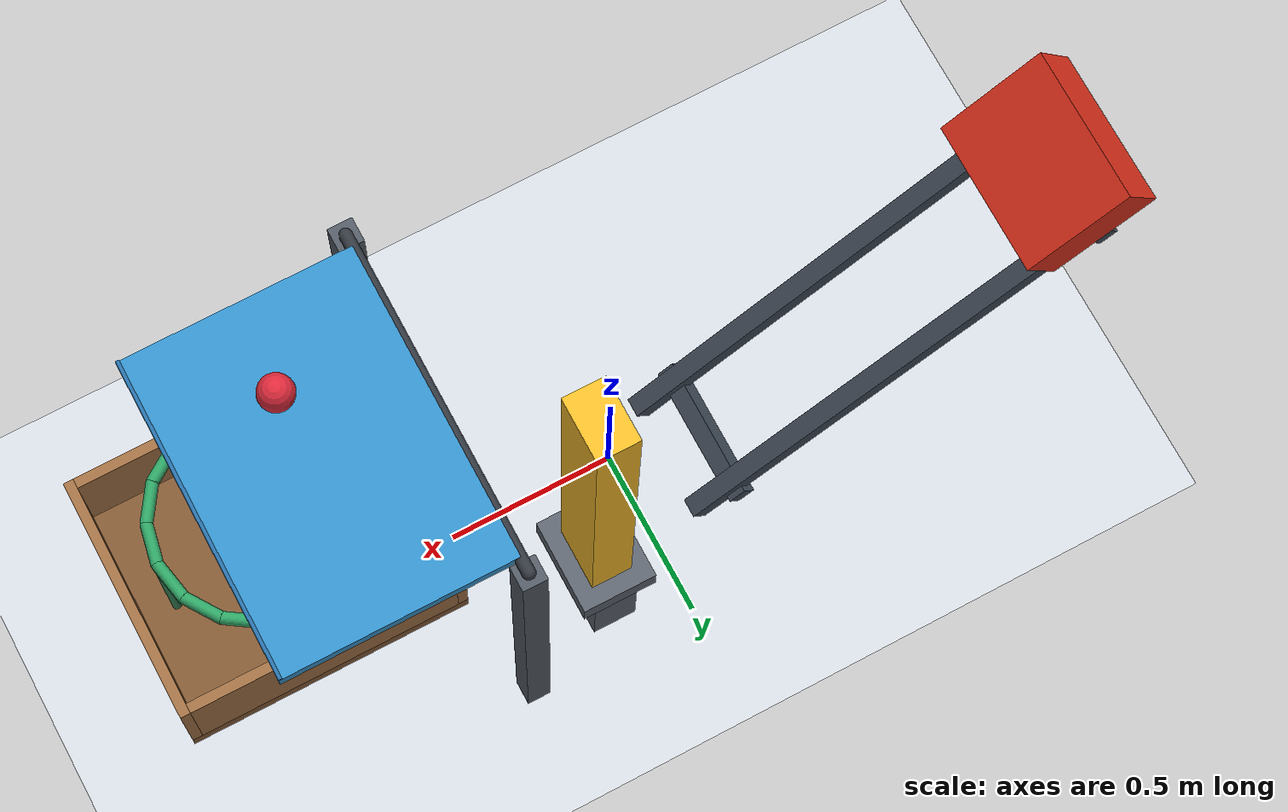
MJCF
<mujoco model="cart_domino_flap_ball">
  <compiler angle="degree" autolimits="true"/>
  <option timestep="0.002" gravity="0 0 -9.81" integrator="implicitfast" iterations="100" tolerance="1e-9"/>
  <size njmax="2000" nconmax="400"/>
  <visual>
    <global azimuth="135" elevation="-22"/>
    <headlight ambient="0.35 0.35 0.35" diffuse="0.7 0.7 0.7" specular="0.2 0.2 0.2"/>
  </visual>

  <worldbody>
    <light name="overhead" pos="0 -2 4" dir="0 0 -1"/>
    <camera name="overview" pos="2.8 -4.5 2.8" xyaxes="0.86 0.51 0 -0.23 0.39 0.89"/>
    <geom name="floor" type="plane" size="5 5 0.1" rgba="0.82 0.84 0.87 1" friction="0.9 0.02 0.01" condim="6"/>

    <!-- The slide joint supplies the rail constraint; its travel is 1.2 m. -->
    <body name="rail" pos="-0.546 0.31 1.392" quat="0.948683298 0 0.316227766 0">
      <geom name="rail_left" type="box" pos="0 -0.15 0" size="0.70 0.025 0.03" contype="0" conaffinity="0" rgba="0.24 0.28 0.33 1"/>
      <geom name="rail_right" type="box" pos="0 0.15 0" size="0.70 0.025 0.03" contype="0" conaffinity="0" rgba="0.24 0.28 0.33 1"/>
      <geom name="rail_crossbar_upper" type="box" pos="-0.58 0 -0.025" size="0.025 0.19 0.025" contype="0" conaffinity="0" rgba="0.24 0.28 0.33 1"/>
      <geom name="rail_crossbar_lower" type="box" pos="0.58 0 -0.025" size="0.025 0.19 0.025" contype="0" conaffinity="0" rgba="0.24 0.28 0.33 1"/>
    </body>

    <body name="cart" pos="-0.96 0.31 1.84">
      <joint name="cart_slide" type="slide" axis="0.8 0 -0.6" range="0 1.2" damping="0.05" solreflimit="0.008 1"/>
      <geom name="cart_chassis" type="box" size="0.15 0.20 0.08" quat="0.948683298 0 0.316227766 0" mass="1.8" friction="0.6 0.01 0.001" solref="0.008 1" rgba="0.85 0.18 0.10 1"/>
    </body>

    <body name="domino_support" pos="0.21 0.31 0">
      <geom name="domino_support_column" type="box" pos="0 0 0.18" size="0.065 0.12 0.18" rgba="0.36 0.39 0.43 1"/>
      <geom name="domino_support_top" type="box" pos="0 0 0.36" size="0.11 0.14 0.04" friction="1.2 0.02 0.002" solref="0.008 1" rgba="0.36 0.39 0.43 1"/>
    </body>

    <!-- Offset across the flap, the falling domino stays beside the ball's path. -->
    <body name="domino" pos="0.21 0.31 1.0">
      <freejoint name="domino_free"/>
      <geom name="domino_slab" type="box" size="0.06 0.09 0.60" mass="1.5" friction="1.2 0.02 0.002" condim="4" solref="0.008 1" rgba="0.96 0.73 0.16 1"/>
    </body>

    <body name="flap_support" pos="0.5 0 0">
      <geom name="flap_support_positive" type="box" pos="0 0.49 0.65" size="0.035 0.035 0.65" rgba="0.32 0.35 0.39 1"/>
      <geom name="flap_support_negative" type="box" pos="0 -0.49 0.65" size="0.035 0.035 0.65" rgba="0.32 0.35 0.39 1"/>
      <geom name="flap_support_axle" type="capsule" fromto="0 -0.49 1.3 0 0.49 1.3" size="0.018" contype="0" conaffinity="0" rgba="0.20 0.22 0.25 1"/>
    </body>

    <!-- Hinge friction holds the loaded flap until the domino strikes it. -->
    <body name="flap" pos="0.5 0 1.3">
      <joint name="flap_hinge" type="hinge" axis="0 1 0" range="0 60" frictionloss="0.75" damping="0.4" armature="0.002" solreflimit="0.008 1"/>
      <geom name="flap_plate" type="box" pos="0.325 0 0" size="0.325 0.45 0.02" mass="0.12" friction="0.55 0.005 0.001" solref="0.008 1" rgba="0.20 0.56 0.78 1"/>
      <geom name="flap_release_lip" type="box" pos="0.645 0 0.0235" size="0.005 0.45 0.0035" mass="0.004" friction="0.35 0.005 0.001" solref="0.008 1" rgba="0.15 0.43 0.65 1"/>
    </body>

    <body name="ball" pos="0.84 -0.18 1.37">
      <freejoint name="ball_free"/>
      <geom name="ball_sphere" type="sphere" size="0.05" mass="0.06" friction="0.8 0.02 0.01" condim="6" solref="0.015 1" solimp="0.95 0.99 0.001" rgba="0.86 0.16 0.23 1"/>
    </body>

    <!-- A closed, sixteen-segment circular ring with a clear central opening. -->
    <body name="ring" pos="0.98 -0.18 0.50">
      <geom name="ring_01" type="capsule" fromto="0.300000 0 0 0.277164 0.114805 0" size="0.018" friction="0.7 0.02 0.01" condim="6" rgba="0.18 0.64 0.39 1"/>
      <geom name="ring_02" type="capsule" fromto="0.277164 0.114805 0 0.212132 0.212132 0" size="0.018" friction="0.7 0.02 0.01" condim="6" rgba="0.18 0.64 0.39 1"/>
      <geom name="ring_03" type="capsule" fromto="0.212132 0.212132 0 0.114805 0.277164 0" size="0.018" friction="0.7 0.02 0.01" condim="6" rgba="0.18 0.64 0.39 1"/>
      <geom name="ring_04" type="capsule" fromto="0.114805 0.277164 0 0 0.300000 0" size="0.018" friction="0.7 0.02 0.01" condim="6" rgba="0.18 0.64 0.39 1"/>
      <geom name="ring_05" type="capsule" fromto="0 0.300000 0 -0.114805 0.277164 0" size="0.018" friction="0.7 0.02 0.01" condim="6" rgba="0.18 0.64 0.39 1"/>
      <geom name="ring_06" type="capsule" fromto="-0.114805 0.277164 0 -0.212132 0.212132 0" size="0.018" friction="0.7 0.02 0.01" condim="6" rgba="0.18 0.64 0.39 1"/>
      <geom name="ring_07" type="capsule" fromto="-0.212132 0.212132 0 -0.277164 0.114805 0" size="0.018" friction="0.7 0.02 0.01" condim="6" rgba="0.18 0.64 0.39 1"/>
      <geom name="ring_08" type="capsule" fromto="-0.277164 0.114805 0 -0.300000 0 0" size="0.018" friction="0.7 0.02 0.01" condim="6" rgba="0.18 0.64 0.39 1"/>
      <geom name="ring_09" type="capsule" fromto="-0.300000 0 0 -0.277164 -0.114805 0" size="0.018" friction="0.7 0.02 0.01" condim="6" rgba="0.18 0.64 0.39 1"/>
      <geom name="ring_10" type="capsule" fromto="-0.277164 -0.114805 0 -0.212132 -0.212132 0" size="0.018" friction="0.7 0.02 0.01" condim="6" rgba="0.18 0.64 0.39 1"/>
      <geom name="ring_11" type="capsule" fromto="-0.212132 -0.212132 0 -0.114805 -0.277164 0" size="0.018" friction="0.7 0.02 0.01" condim="6" rgba="0.18 0.64 0.39 1"/>
      <geom name="ring_12" type="capsule" fromto="-0.114805 -0.277164 0 0 -0.300000 0" size="0.018" friction="0.7 0.02 0.01" condim="6" rgba="0.18 0.64 0.39 1"/>
      <geom name="ring_13" type="capsule" fromto="0 -0.300000 0 0.114805 -0.277164 0" size="0.018" friction="0.7 0.02 0.01" condim="6" rgba="0.18 0.64 0.39 1"/>
      <geom name="ring_14" type="capsule" fromto="0.114805 -0.277164 0 0.212132 -0.212132 0" size="0.018" friction="0.7 0.02 0.01" condim="6" rgba="0.18 0.64 0.39 1"/>
      <geom name="ring_15" type="capsule" fromto="0.212132 -0.212132 0 0.277164 -0.114805 0" size="0.018" friction="0.7 0.02 0.01" condim="6" rgba="0.18 0.64 0.39 1"/>
      <geom name="ring_16" type="capsule" fromto="0.277164 -0.114805 0 0.300000 0 0" size="0.018" friction="0.7 0.02 0.01" condim="6" rgba="0.18 0.64 0.39 1"/>
    </body>

    <body name="ring_support" pos="0.98 -0.18 0">
      <geom name="ring_support_left" type="capsule" fromto="-0.30 0 0.05 -0.30 0 0.48" size="0.014" rgba="0.18 0.45 0.29 1"/>
      <geom name="ring_support_right" type="capsule" fromto="0.30 0 0.05 0.30 0 0.48" size="0.014" rgba="0.18 0.45 0.29 1"/>
    </body>

    <body name="box" pos="0.98 -0.18 0">
      <geom name="box_bottom" type="box" pos="0 0 0.025" size="0.43 0.37 0.025" friction="1.0 0.03 0.015" condim="6" solref="0.015 1" rgba="0.50 0.34 0.20 1"/>
      <geom name="box_left" type="box" pos="-0.415 0 0.20" size="0.015 0.37 0.15" friction="1.0 0.03 0.015" condim="6" solref="0.015 1" rgba="0.62 0.43 0.26 1"/>
      <geom name="box_right" type="box" pos="0.415 0 0.20" size="0.015 0.37 0.15" friction="1.0 0.03 0.015" condim="6" solref="0.015 1" rgba="0.62 0.43 0.26 1"/>
      <geom name="box_front" type="box" pos="0 -0.355 0.20" size="0.40 0.015 0.15" friction="1.0 0.03 0.015" condim="6" solref="0.015 1" rgba="0.62 0.43 0.26 1"/>
      <geom name="box_back" type="box" pos="0 0.355 0.20" size="0.40 0.015 0.15" friction="1.0 0.03 0.015" condim="6" solref="0.015 1" rgba="0.62 0.43 0.26 1"/>
    </body>
  </worldbody>

  <keyframe>
    <key name="start" qpos="0 0.21 0.31 1.0 1 0 0 0 0 0.84 -0.18 1.37 1 0 0 0"/>
  </keyframe>
</mujoco>
